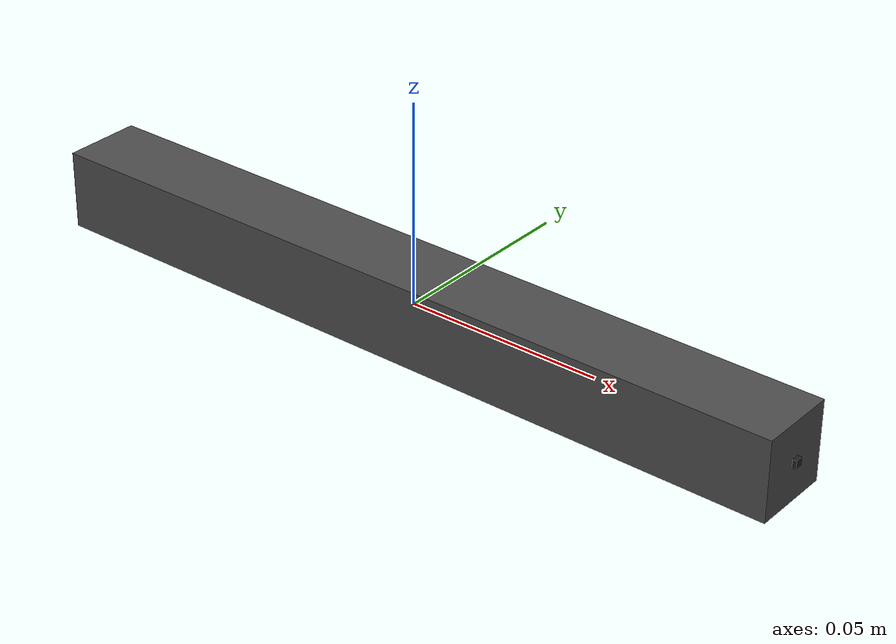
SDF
<?xml version="1.0" ?>

<sdf version="1.4">
  <model name="stereo_cam">
    <link name="base_link">
      <inertial>
        <pose>0 0 0 0 0 0</pose>
        <mass>0.01</mass>
        <inertia>
          <ixx>8.86e-4</ixx>
          <ixy>0</ixy>
          <ixz>0</ixz>
          <iyy>8.86e-4</iyy>
          <iyz>0</iyz>
          <izz>9.77e-4</izz>
        </inertia>
      </inertial>
      <collision name='base_collision'>
        <pose>0 0 0 0 0 0</pose>
        <geometry>
          <box>
            <size>0.06 0.02 0.02</size>
          </box>
        </geometry>
        <surface>
          <contact>
            <ode>
              <min_depth>0.001</min_depth>
              <max_vel>0</max_vel>
            </ode>
          </contact>
          <friction>
            <ode/>
          </friction>
        </surface>
      </collision>
      <visual name='base_visual'>
        <pose>0 0 0 0 0 0</pose>
        <geometry>
          <box>
            <size>0.2 0.02 0.02</size>
          </box>
        </geometry>
        <material>
          <script>
            <name>Gazebo/DarkGrey</name>
            <uri>file://media/materials/scripts/gazebo.material</uri>
          </script>
        </material>
      </visual>
    </link>

    <!-- IMU ----------------------------------------------------------------------------------------- -->
    <link name="imu_link">
      <pose>0.1 0 0 -1.57 0 1.57</pose>
      <inertial>
        <pose>0 0 0 0 0 0</pose>
        <mass>0.01</mass>
        <inertia>
          <ixx>1e-10</ixx>
          <ixy>0</ixy>
          <ixz>0</ixz>
          <iyy>1e-10</iyy>
          <iyz>0</iyz>
          <izz>1e-10</izz>
        </inertia>
      </inertial>
      <visual name="imu_visual">
        <pose>0 0 0 0 0 0</pose>
        <geometry>
          <box>
            <size>0.002 0.002 0.002</size>
          </box>
        </geometry>
        <material>
          <script>
            <name>Gazebo/Black</name>
            <uri>file://media/materials/scripts/gazebo.material</uri>
          </script>
        </material>
      </visual>
    </link>

    <!-- CAMERAS----------------------------------------------------------------------------------------- -->
    <link name="stereo_camera_link">
      <pose>0 0 0 0 0 0</pose>
      <inertial>
        <pose>0 0 0 0 0 0</pose>
        <mass>0.05</mass>
        <inertia>
          <ixx>1e-10</ixx>
          <ixy>0</ixy>
          <ixz>0</ixz>
          <iyy>1e-10</iyy>
          <iyz>0</iyz>
          <izz>1e-10</izz>
        </inertia>
      </inertial>
      <sensor type="multicamera" name="stereo_cameras">
        <update_rate>30</update_rate>
        <always_on>1</always_on>
        <visualize>true</visualize>
        <camera name="cam0">
          <pose>0.1 0 0 0 1.5708 -1.5708</pose>
          <horizontal_fov>0.7748</horizontal_fov>
          <image>
            <width>640</width>
            <height>480</height>
            <format>L8</format>
          </image>
          <clip>
            <near>0.1</near>
            <far>100</far>
          </clip>
        </camera>
        <camera name="cam1">
          <pose>-0.1 0 0 0 1.5708 -1.5708</pose>
          <horizontal_fov>0.7748</horizontal_fov>
          <image>
            <width>640</width>
            <height>480</height>
            <format>L8</format>
          </image>
          <clip>
            <near>0.1</near>
            <far>100</far>
          </clip>
        </camera>
        <plugin name="OmniCameraPlugin" filename="libgazebo_omni_plugin.so"/>
      </sensor>
    </link>

    <!-- JOINTS----------------------------------------------------------------------------------------- -->
    <joint name="imu_joint" type="revolute">
      <child>imu_link</child>
      <parent>base_link</parent>
      <axis>
        <xyz>0 0 1</xyz>
        <limit>
          <upper>0</upper>
          <lower>0</lower>
        </limit>
      </axis>
    </joint>

    <joint name="camera_rig_joint" type="revolute">
      <child>stereo_camera_link</child>
      <parent>base_link</parent>
      <axis>
        <xyz>0 0 1</xyz>
        <limit>
          <upper>0</upper>
          <lower>0</lower>
        </limit>
      </axis>
    </joint>

    <joint name="camera_optical_joint" type="revolute">
      <child>stereo_camera_opt_link</child>
      <parent>stereo_camera_link</parent>
      <axis>
        <xyz>0 0 1</xyz>
        <limit>
          <upper>0</upper>
          <lower>0</lower>
        </limit>
      </axis>
    </joint>

    <!-- PLUGINS----------------------------------------------------------------------------------------- -->
    <!-- To install the plugin do:
    sudo add-apt-repository ppa:ethz-asl/gazebo-ros
    sudo apt-get update
    sudo apt-get install ros-indigo-hector-gazebo6-plugins -->
    <plugin name="imu" filename="libhector_gazebo_ros_imu.so">
      <serviceName>/imu/calibrate</serviceName>
      <updateRate>200.0</updateRate>
      <bodyName>imu_link</bodyName>
      <frameId>imu_link</frameId>
      <topicName>cam0_imu</topicName>
      <rpyOffset>0 0 0</rpyOffset>
      <xyzOffset>0 0 0</xyzOffset>
      <gaussianNoise>0.00000001</gaussianNoise>
      <accelDrift>0.00000001 0.00000001 0.00000001</accelDrift>
      <accelDriftFrequency>0.00000001 0.00000001 0.00000001</accelDriftFrequency>
      <accelGaussianNoise>0.00000001 0.00000001 0.00000001</accelGaussianNoise>
      <rateDrift>0.0 0.0 0.0</rateDrift>
      <rateDriftFrequency>0.0 0.0 0.0</rateDriftFrequency>
      <rateGaussianNoise>0.0 0.0 0.0</rateGaussianNoise>
      <headingDrift>0.0 0.0 0.0</headingDrift>
      <headingDriftFrequency>0.0 0.0 0.0</headingDriftFrequency>
      <headingGaussianNoise>0.0 0.0 0.0</headingGaussianNoise>
    </plugin>

    <plugin name="GazeboGroundTruthTf" filename="libgazebo_ground_truth_tf_plugin.so">
      <link_name>stereo_camera_link</link_name>
      <calc_path>false</calc_path>
    </plugin>
  </model>
</sdf>
